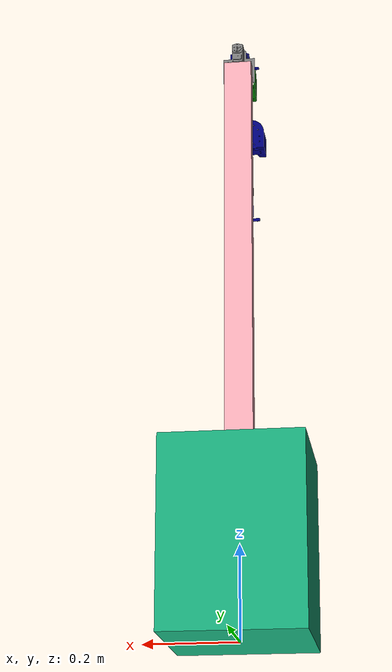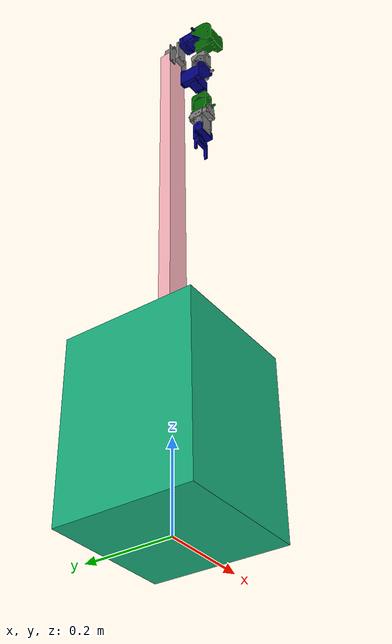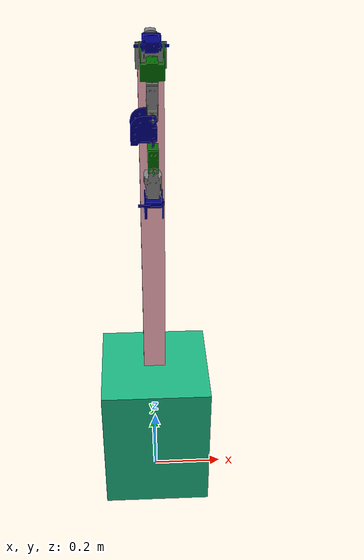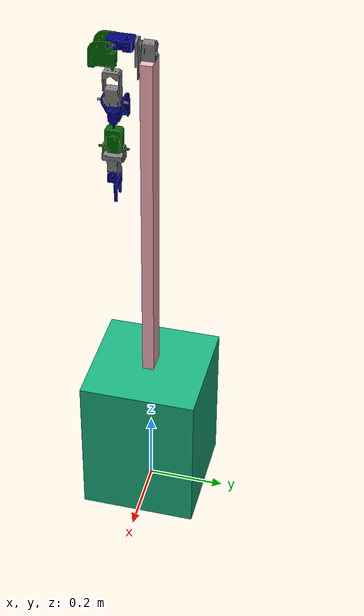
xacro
<?xml version="1.0" encoding="utf-8"?>
<robot name="poc_v2">
  <material name="grey">
    <color rgba="0.5 0.5 0.5 1" />
  </material>
  <material name="blue">
    <color rgba="0 0 0.5 1" />
  </material>
  <material name="green">
    <color rgba="0 0.4 0 1" />
  </material>
  <link name="base_link">
    <inertial>
      <origin rpy="0 0 0" xyz="0 0 0.2" />
      <mass value="80.679624999999998" />
      <inertia ixx="0.8036489742750001" ixy="0.0" ixz="0.0" iyy="0.8036489742750001" iyz="0.0" izz="0.5785809749999999" />
    </inertial>
    <visual>
      <origin rpy="0 0 0" xyz="0 0 0.2" />
      <geometry>
        <box size="0.3 0.3 0.4" />
      </geometry>
      <material name="base_color">
        <color rgba="0.1 0.7 0.5 1" />
      </material>
    </visual>
    <collision>
      <origin rpy="0 0 0" xyz="0 0 0.2" />
      <geometry>
        <box size="0.3 0.3 0.4" />
      </geometry>
    </collision>
  </link>
  <link name="torso_link">
    <inertial>
      <origin rpy="0 0 0" xyz="0 0 0.45" />
      <mass value="4.9199062499999995" />
      <inertia ixx="0.6364390724999999" ixy="0.0" ixz="0.0" iyy="0.6364390724999999" iyz="0.0" izz="0.019286032499999994" />
    </inertial>
    <visual>
      <origin rpy="0 0 0" xyz="0 0 0.45" />
      <geometry>
        <box size="0.06 0.03 0.89" />
      </geometry>
      <material name="torso_color">
        <color rgba="1 0.71 0.75 1" />
      </material>
    </visual>
    <collision>
      <origin rpy="0 0 0" xyz="0 0 0.45" />
      <geometry>
        <box size="0.06 0.03 0.89" />
      </geometry>
    </collision>
  </link>
  <joint name="base_to_torso" type="fixed">
    <parent link="base_link" />
    <child link="torso_link" />
    <origin rpy="0 0 0" xyz="0 0 0.4" />
  </joint>
  <link name="shoulder_base_link">
    <inertial>
      <origin rpy="0 0 0" xyz="9.7487E-05 -0.0077102 -0.018086" />
      <mass value="0.0641142502875" />
      <inertia ixx="2.5606065350249994e-05" ixy="6.408555739425e-10" ixz="8.457118111574997e-09" iyy="3.621531182849999e-05" iyz="4.872616111124998e-07" izz="1.352915179875e-05" />
    </inertial>
    <visual>
      <origin rpy="0 0 0" xyz="0 0 0" />
      <geometry>
        <mesh filename="file:///home/suvi/poc_arm/install/poc_v2/share/poc_v2/meshes/shoulder_base_link.STL" />
      </geometry>
      <material name="grey" />
    </visual>
    <collision>
      <origin rpy="0 0 0" xyz="0 0 0" />
      <geometry>
        <mesh filename="file:///home/suvi/poc_arm/install/poc_v2/share/poc_v2/meshes/shoulder_base_link.STL" />
      </geometry>
    </collision>
  </link>
  <joint name="torso_to_shoulder_base" type="fixed">
    <parent link="torso_link" />
    <child link="shoulder_base_link" />
    <origin rpy="0 0 0" xyz="0 0 0.93" />
  </joint>
  <link name="shoulder_pitch_link">
    <inertial>
      <origin rpy="0 0 0" xyz="-4.3944E-05 -0.027448 -0.00011001" />
      <mass value="0.0572932922625" />
      <inertia ixx="1.7685484662824994e-05" ixy="8.89278958575e-09" ixz="-7.008351350174998e-10" iyy="8.845345945799997e-06" iyz="-2.1253207814999994e-09" izz="1.6104994299449995e-05" />
    </inertial>
    <visual>
      <origin rpy="0 0 0" xyz="0 0 0" />
      <geometry>
        <mesh filename="file:///home/suvi/poc_arm/install/poc_v2/share/poc_v2/meshes/shoulder_pitch_link.STL" />
      </geometry>
      <material name="blue" />
    </visual>
    <collision>
      <origin rpy="0 0 0" xyz="0 0 0" />
      <geometry>
        <mesh filename="file:///home/suvi/poc_arm/install/poc_v2/share/poc_v2/meshes/shoulder_pitch_link.STL" />
      </geometry>
    </collision>
  </link>
  <joint name="shoulder_pitch_joint" type="revolute">
    <origin rpy="0 0 0" xyz="0 -0.039425 0" />
    <parent link="shoulder_base_link" />
    <child link="shoulder_pitch_link" />
    <axis xyz="0 -1 0" />
    <limit effort="8" lower="-1.5708" upper="1.5708" velocity="4.7124" />
    <dynamics damping="0.05" friction="0.2"/>
  </joint>
  <link name="shoulder_yaw_link">
    <inertial>
      <origin rpy="0 0 0" xyz="4.1777E-05 -0.022349 -0.037122" />
      <mass value="0.07690797449999998" />
      <inertia ixx="3.3823843798499996e-05" ixy="2.1544426905749998e-09" ixz="-1.1680392723299995e-09" iyy="2.3883822647999988e-05" iyz="-4.073788644975e-06" izz="2.9891421771749984e-05" />
    </inertial>
    <visual>
      <origin rpy="0 0 0" xyz="0 0 0" />
      <geometry>
        <mesh filename="file:///home/suvi/poc_arm/install/poc_v2/share/poc_v2/meshes/shoulder_yaw_link.STL" />
      </geometry>
      <material name="green" />
    </visual>
    <collision>
      <origin rpy="0 0 0" xyz="0 0 0" />
      <geometry>
        <mesh filename="file:///home/suvi/poc_arm/install/poc_v2/share/poc_v2/meshes/shoulder_yaw_link.STL" />
      </geometry>
    </collision>
  </link>
  <joint name="shoulder_yaw_joint" type="revolute">
    <origin rpy="0 0 0" xyz="0 -0.047424 0" />
    <parent link="shoulder_pitch_link" />
    <child link="shoulder_yaw_link" />
    <axis xyz="-1 0 0" />
    <limit effort="8" lower="-1.5708" upper="1.5708" velocity="4.7124" />
    <dynamics damping="0.05" friction="0.2"/>
  </joint>
  <link name="shoulder_roll_link">
    <inertial>
      <origin rpy="0 0 0" xyz="0.00010503 -6.0033E-06 -0.046163" />
      <mass value="0.06103537295624999" />
      <inertia ixx="1.9762397502749993e-05" ixy="-1.4238106353449998e-09" ixz="2.3887679854499997e-09" iyy="2.1731501420999993e-05" iyz="-8.859231889199999e-09" izz="9.244373958225e-06" />
    </inertial>
    <visual>
      <origin rpy="0 0 0" xyz="0 0 0" />
      <geometry>
        <mesh filename="file:///home/suvi/poc_arm/install/poc_v2/share/poc_v2/meshes/shoulder_roll_link.STL" />
      </geometry>
      <material name="grey" />
    </visual>
    <collision>
      <origin rpy="0 0 0" xyz="0 0 0" />
      <geometry>
        <mesh filename="file:///home/suvi/poc_arm/install/poc_v2/share/poc_v2/meshes/shoulder_roll_link.STL" />
      </geometry>
    </collision>
  </link>
  <joint name="shoulder_roll_joint" type="revolute">
    <origin rpy="0 0 0" xyz="0.000125 0 -0.08105" />
    <parent link="shoulder_yaw_link" />
    <child link="shoulder_roll_link" />
    <axis xyz="0 0 -1" />
    <limit effort="8" lower="-3.1416" upper="3.1416" velocity="4.7124" />
  </joint>
  <link name="elbow_pitch_link">
    <inertial>
      <origin rpy="0 0 0" xyz="-0.022349 -4.1658E-05 -0.03471" />
      <mass value="0.07690797449999998" />
      <inertia ixx="2.3883822647999988e-05" ixy="-1.9905114143249997e-09" ixz="-4.0732100639999995e-06" iyy="3.3823843798499996e-05" iyz="1.30574154438e-09" izz="2.9891421771749984e-05" />
    </inertial>
    <visual>
      <origin rpy="0 0 0" xyz="0 0 0" />
      <geometry>
        <mesh filename="file:///home/suvi/poc_arm/install/poc_v2/share/poc_v2/meshes/elbow_pitch_link.STL" />
      </geometry>
      <material name="blue" />
    </visual>
    <collision>
      <origin rpy="0 0 0" xyz="0 0 0" />
      <geometry>
        <mesh filename="file:///home/suvi/poc_arm/install/poc_v2/share/poc_v2/meshes/elbow_pitch_link.STL" />
      </geometry>
    </collision>
  </link>
  <joint name="elbow_pitch_joint" type="revolute">
    <origin rpy="0 0 0" xyz="0 0 -0.072424" />
    <parent link="shoulder_roll_link" />
    <child link="elbow_pitch_link" />
    <axis xyz="0 1 0" />
    <limit effort="8" lower="-1.5708" upper="1.5708" velocity="4.7124" />
    <dynamics damping="0.05" friction="0.2"/>
  </joint>
  <link name="wrist_roll_link">
    <inertial>
      <origin rpy="0 0 0" xyz="-0.0001094 0.00049455 -0.027472" />
      <mass value="0.05887651809374999" />
      <inertia ixx="1.6873156973925e-05" ixy="-4.4770595845499995e-10" ixz="-2.1827931583499993e-09" iyy="1.8625100166224997e-05" iyz="9.057878023949999e-09" izz="9.021234562199998e-06" />
    </inertial>
    <visual>
      <origin rpy="0 0 0" xyz="0 0 0" />
      <geometry>
        <mesh filename="file:///home/suvi/poc_arm/install/poc_v2/share/poc_v2/meshes/wrist_roll_link.STL" />
      </geometry>
      <material name="green" />
    </visual>
    <collision>
      <origin rpy="0 0 0" xyz="0 0 0" />
      <geometry>
        <mesh filename="file:///home/suvi/poc_arm/install/poc_v2/share/poc_v2/meshes/wrist_roll_link.STL" />
      </geometry>
    </collision>
  </link>
  <joint name="wrist_roll_joint" type="revolute">
    <origin rpy="0 0 0" xyz="0 -0.000125 -0.07805" />
    <parent link="elbow_pitch_link" />
    <child link="wrist_roll_link" />
    <axis xyz="0 0 -1" />
    <limit effort="8" lower="-3.1416" upper="3.1416" velocity="4.7124" />
  </joint>
  <link name="wrist_pitch_link">
    <inertial>
      <origin rpy="0 0 0" xyz="-1.2164E-05 -0.00021517 -0.040822" />
      <mass value="0.0640926027" />
      <inertia ixx="2.3498101998e-05" ixy="7.274884319324997e-10" ixz="-6.915585533849998e-09" iyy="1.8844960936725e-05" iyz="-2.0545410422249995e-09" izz="1.4861430923849993e-05" />
    </inertial>
    <visual>
      <origin rpy="0 0 0" xyz="0 0 0" />
      <geometry>
        <mesh filename="file:///home/suvi/poc_arm/install/poc_v2/share/poc_v2/meshes/wrist_pitch_link.STL" />
      </geometry>
      <material name="grey" />
    </visual>
    <collision>
      <origin rpy="0 0 0" xyz="0 0 0" />
      <geometry>
        <mesh filename="file:///home/suvi/poc_arm/install/poc_v2/share/poc_v2/meshes/wrist_pitch_link.STL" />
      </geometry>
    </collision>
  </link>
  <joint name="wrist_pitch_joint" type="revolute">
    <origin rpy="0 0 0" xyz="0 0 -0.047424" />
    <parent link="wrist_roll_link" />
    <child link="wrist_pitch_link" />
    <axis xyz="0 -1 0" />
    <limit effort="8" lower="-1.5708" upper="1.5708" velocity="4.7124" />
    <dynamics damping="0.05" friction="0.2"/>
  </joint>
  <link name="wrist_yaw_link">
    <inertial>
      <origin rpy="0 0 0" xyz="-0.00134389225503382 0.00410515462928857 -0.0264402444455359" />
      <mass value="0.015127086612364886" />
      <inertia ixx="4.3079111080336144e-06" ixy="-1.1690007693578997e-09" ixz="6.26356731767762e-07" iyy="9.609480629955317e-06" iyz="8.087581922736634e-08" izz="6.942859301080583e-06" />
    </inertial>
    <visual>
      <origin rpy="0 0 0" xyz="0 0 0" />
      <geometry>
        <mesh filename="file:///home/suvi/poc_arm/install/poc_v2/share/poc_v2/meshes/wrist_yaw_link.STL" />
      </geometry>
      <material name="blue" />
    </visual>
    <collision>
      <origin rpy="0 0 0" xyz="0 0 0" />
      <geometry>
        <mesh filename="file:///home/suvi/poc_arm/install/poc_v2/share/poc_v2/meshes/wrist_yaw_link.STL" />
      </geometry>
    </collision>
  </link>
  <joint name="wrist_yaw_joint" type="revolute">
    <origin rpy="0 0 0" xyz="0 -0.000125 -0.064924" />
    <parent link="wrist_pitch_link" />
    <child link="wrist_yaw_link" />
    <axis xyz="-1 0 0" />
    <limit effort="8" lower="-1.5708" upper="1.5708" velocity="4.7124" />
    <dynamics damping="0.05" friction="0.2"/>
  </joint>
  <gazebo reference="torso_link">
    <material>Gazebo/White</material>
  </gazebo>
  <gazebo reference="camera_link">
    <material>Gazebo/Black</material>
  </gazebo>
  <gazebo reference="shoulder_base_link">
    <material>Gazebo/Grey</material>
  </gazebo>
  <gazebo reference="shoulder_pitch_link">
    <material>Gazebo/Blue</material>
  </gazebo>
  <gazebo reference="shoulder_yaw_link">
    <material>Gazebo/Green</material>
  </gazebo>
  <gazebo reference="shoulder_roll_link">
    <material>Gazebo/Yellow</material>
  </gazebo>
  <gazebo reference="elbow_pitch_link">
    <material>Gazebo/Blue</material>
  </gazebo>
  <gazebo reference="wrist_yaw_link">
    <material>Gazebo/Green</material>
  </gazebo>
  <gazebo reference="wrist_pitch_link">
    <material>Gazebo/Grey</material>
  </gazebo>
  <gazebo reference="wrist_roll_link">
    <material>Gazebo/Red</material>
  </gazebo>
</robot>
